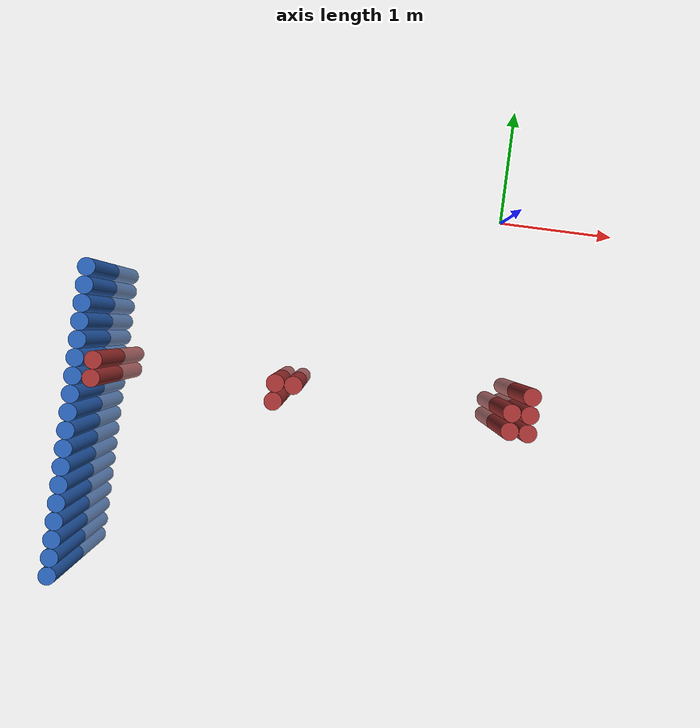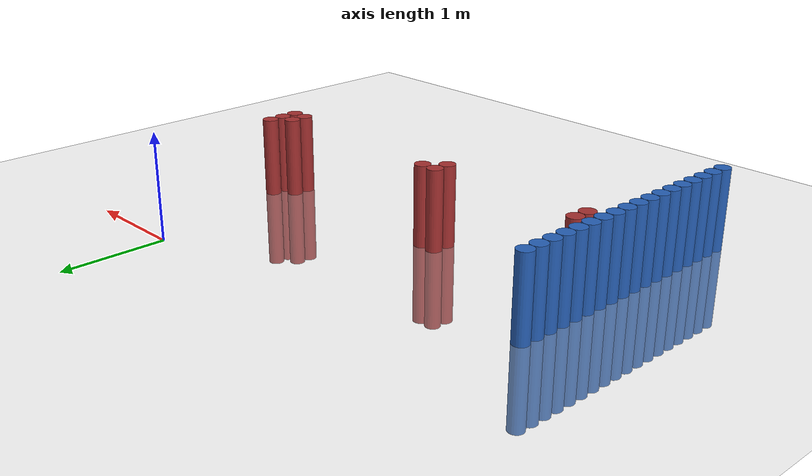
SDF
<sdf version="1.6">
 <world name="default">
  <model name="ground_plane">
   <static>1</static>
   <link name="link">
    <collision name="collision">
     <geometry><plane><normal>0 0 1</normal><size>100 100</size></plane></geometry>
     <surface><friction><ode><mu>100</mu><mu2>50</mu2></ode></friction></surface>
    </collision>
    <visual name="visual">
     <cast_shadows>0</cast_shadows>
     <geometry><plane><normal>0 0 1</normal><size>100 100</size></plane></geometry>
     <material>
      <script><uri>file://media/materials/scripts/gazebo.material</uri><name>Gazebo/Grey</name></script>
     </material>
    </visual>
   </link>
  </model>
  <model name="unit_cylinder_69">
   <static>1</static>
   <pose>-3.425000 -3.425000 0.000000 0.000000 0.000000 0.000000</pose>
   <link name="link">
    <inertial>
     <mass>1</mass>
     <inertia><ixx>0.145833</ixx><ixy>0</ixy><ixz>0</ixz><iyy>0.145833</iyy><iyz>0</iyz><izz>0.125</izz></inertia>
    </inertial>
    <collision name="collision">
     <geometry><cylinder><radius>0.075000</radius><length>1.5</length></cylinder></geometry>
    </collision>
    <visual name="visual">
     <geometry><cylinder><radius>0.075000</radius><length>1.5</length></cylinder></geometry>
     <material>
      <ambient>0.152000 0.379000 0.720000 1</ambient>
      <diffuse>0.152000 0.379000 0.720000 1</diffuse>
     </material>
     <material>
      <script><name>Gazebo/Grey</name><uri>file://media/materials/scripts/gazebo.material</uri></script>
     </material>
    </visual>
   </link>
  </model>
  <model name="unit_cylinder_71">
   <static>1</static>
   <pose>-3.425000 -3.275000 0.000000 0.000000 0.000000 0.000000</pose>
   <link name="link">
    <inertial>
     <mass>1</mass>
     <inertia><ixx>0.145833</ixx><ixy>0</ixy><ixz>0</ixz><iyy>0.145833</iyy><iyz>0</iyz><izz>0.125</izz></inertia>
    </inertial>
    <collision name="collision">
     <geometry><cylinder><radius>0.075000</radius><length>1.5</length></cylinder></geometry>
    </collision>
    <visual name="visual">
     <geometry><cylinder><radius>0.075000</radius><length>1.5</length></cylinder></geometry>
     <material>
      <ambient>0.152000 0.379000 0.720000 1</ambient>
      <diffuse>0.152000 0.379000 0.720000 1</diffuse>
     </material>
     <material>
      <script><name>Gazebo/Grey</name><uri>file://media/materials/scripts/gazebo.material</uri></script>
     </material>
    </visual>
   </link>
  </model>
  <model name="unit_cylinder_73">
   <static>1</static>
   <pose>-3.425000 -3.125000 0.000000 0.000000 0.000000 0.000000</pose>
   <link name="link">
    <inertial>
     <mass>1</mass>
     <inertia><ixx>0.145833</ixx><ixy>0</ixy><ixz>0</ixz><iyy>0.145833</iyy><iyz>0</iyz><izz>0.125</izz></inertia>
    </inertial>
    <collision name="collision">
     <geometry><cylinder><radius>0.075000</radius><length>1.5</length></cylinder></geometry>
    </collision>
    <visual name="visual">
     <geometry><cylinder><radius>0.075000</radius><length>1.5</length></cylinder></geometry>
     <material>
      <ambient>0.152000 0.379000 0.720000 1</ambient>
      <diffuse>0.152000 0.379000 0.720000 1</diffuse>
     </material>
     <material>
      <script><name>Gazebo/Grey</name><uri>file://media/materials/scripts/gazebo.material</uri></script>
     </material>
    </visual>
   </link>
  </model>
  <model name="unit_cylinder_75">
   <static>1</static>
   <pose>-3.425000 -2.975000 0.000000 0.000000 0.000000 0.000000</pose>
   <link name="link">
    <inertial>
     <mass>1</mass>
     <inertia><ixx>0.145833</ixx><ixy>0</ixy><ixz>0</ixz><iyy>0.145833</iyy><iyz>0</iyz><izz>0.125</izz></inertia>
    </inertial>
    <collision name="collision">
     <geometry><cylinder><radius>0.075000</radius><length>1.5</length></cylinder></geometry>
    </collision>
    <visual name="visual">
     <geometry><cylinder><radius>0.075000</radius><length>1.5</length></cylinder></geometry>
     <material>
      <ambient>0.152000 0.379000 0.720000 1</ambient>
      <diffuse>0.152000 0.379000 0.720000 1</diffuse>
     </material>
     <material>
      <script><name>Gazebo/Grey</name><uri>file://media/materials/scripts/gazebo.material</uri></script>
     </material>
    </visual>
   </link>
  </model>
  <model name="unit_cylinder_77">
   <static>1</static>
   <pose>-3.425000 -2.825000 0.000000 0.000000 0.000000 0.000000</pose>
   <link name="link">
    <inertial>
     <mass>1</mass>
     <inertia><ixx>0.145833</ixx><ixy>0</ixy><ixz>0</ixz><iyy>0.145833</iyy><iyz>0</iyz><izz>0.125</izz></inertia>
    </inertial>
    <collision name="collision">
     <geometry><cylinder><radius>0.075000</radius><length>1.5</length></cylinder></geometry>
    </collision>
    <visual name="visual">
     <geometry><cylinder><radius>0.075000</radius><length>1.5</length></cylinder></geometry>
     <material>
      <ambient>0.152000 0.379000 0.720000 1</ambient>
      <diffuse>0.152000 0.379000 0.720000 1</diffuse>
     </material>
     <material>
      <script><name>Gazebo/Grey</name><uri>file://media/materials/scripts/gazebo.material</uri></script>
     </material>
    </visual>
   </link>
  </model>
  <model name="unit_cylinder_79">
   <static>1</static>
   <pose>-3.425000 -2.675000 0.000000 0.000000 0.000000 0.000000</pose>
   <link name="link">
    <inertial>
     <mass>1</mass>
     <inertia><ixx>0.145833</ixx><ixy>0</ixy><ixz>0</ixz><iyy>0.145833</iyy><iyz>0</iyz><izz>0.125</izz></inertia>
    </inertial>
    <collision name="collision">
     <geometry><cylinder><radius>0.075000</radius><length>1.5</length></cylinder></geometry>
    </collision>
    <visual name="visual">
     <geometry><cylinder><radius>0.075000</radius><length>1.5</length></cylinder></geometry>
     <material>
      <ambient>0.152000 0.379000 0.720000 1</ambient>
      <diffuse>0.152000 0.379000 0.720000 1</diffuse>
     </material>
     <material>
      <script><name>Gazebo/Grey</name><uri>file://media/materials/scripts/gazebo.material</uri></script>
     </material>
    </visual>
   </link>
  </model>
  <model name="unit_cylinder_81">
   <static>1</static>
   <pose>-3.425000 -2.525000 0.000000 0.000000 0.000000 0.000000</pose>
   <link name="link">
    <inertial>
     <mass>1</mass>
     <inertia><ixx>0.145833</ixx><ixy>0</ixy><ixz>0</ixz><iyy>0.145833</iyy><iyz>0</iyz><izz>0.125</izz></inertia>
    </inertial>
    <collision name="collision">
     <geometry><cylinder><radius>0.075000</radius><length>1.5</length></cylinder></geometry>
    </collision>
    <visual name="visual">
     <geometry><cylinder><radius>0.075000</radius><length>1.5</length></cylinder></geometry>
     <material>
      <ambient>0.152000 0.379000 0.720000 1</ambient>
      <diffuse>0.152000 0.379000 0.720000 1</diffuse>
     </material>
     <material>
      <script><name>Gazebo/Grey</name><uri>file://media/materials/scripts/gazebo.material</uri></script>
     </material>
    </visual>
   </link>
  </model>
  <model name="unit_cylinder_83">
   <static>1</static>
   <pose>-3.425000 -2.375000 0.000000 0.000000 0.000000 0.000000</pose>
   <link name="link">
    <inertial>
     <mass>1</mass>
     <inertia><ixx>0.145833</ixx><ixy>0</ixy><ixz>0</ixz><iyy>0.145833</iyy><iyz>0</iyz><izz>0.125</izz></inertia>
    </inertial>
    <collision name="collision">
     <geometry><cylinder><radius>0.075000</radius><length>1.5</length></cylinder></geometry>
    </collision>
    <visual name="visual">
     <geometry><cylinder><radius>0.075000</radius><length>1.5</length></cylinder></geometry>
     <material>
      <ambient>0.152000 0.379000 0.720000 1</ambient>
      <diffuse>0.152000 0.379000 0.720000 1</diffuse>
     </material>
     <material>
      <script><name>Gazebo/Grey</name><uri>file://media/materials/scripts/gazebo.material</uri></script>
     </material>
    </visual>
   </link>
  </model>
  <model name="unit_cylinder_85">
   <static>1</static>
   <pose>-3.425000 -2.225000 0.000000 0.000000 0.000000 0.000000</pose>
   <link name="link">
    <inertial>
     <mass>1</mass>
     <inertia><ixx>0.145833</ixx><ixy>0</ixy><ixz>0</ixz><iyy>0.145833</iyy><iyz>0</iyz><izz>0.125</izz></inertia>
    </inertial>
    <collision name="collision">
     <geometry><cylinder><radius>0.075000</radius><length>1.5</length></cylinder></geometry>
    </collision>
    <visual name="visual">
     <geometry><cylinder><radius>0.075000</radius><length>1.5</length></cylinder></geometry>
     <material>
      <ambient>0.152000 0.379000 0.720000 1</ambient>
      <diffuse>0.152000 0.379000 0.720000 1</diffuse>
     </material>
     <material>
      <script><name>Gazebo/Grey</name><uri>file://media/materials/scripts/gazebo.material</uri></script>
     </material>
    </visual>
   </link>
  </model>
  <model name="unit_cylinder_87">
   <static>1</static>
   <pose>-3.425000 -2.075000 0.000000 0.000000 0.000000 0.000000</pose>
   <link name="link">
    <inertial>
     <mass>1</mass>
     <inertia><ixx>0.145833</ixx><ixy>0</ixy><ixz>0</ixz><iyy>0.145833</iyy><iyz>0</iyz><izz>0.125</izz></inertia>
    </inertial>
    <collision name="collision">
     <geometry><cylinder><radius>0.075000</radius><length>1.5</length></cylinder></geometry>
    </collision>
    <visual name="visual">
     <geometry><cylinder><radius>0.075000</radius><length>1.5</length></cylinder></geometry>
     <material>
      <ambient>0.152000 0.379000 0.720000 1</ambient>
      <diffuse>0.152000 0.379000 0.720000 1</diffuse>
     </material>
     <material>
      <script><name>Gazebo/Grey</name><uri>file://media/materials/scripts/gazebo.material</uri></script>
     </material>
    </visual>
   </link>
  </model>
  <model name="unit_cylinder_89">
   <static>1</static>
   <pose>-3.425000 -1.925000 0.000000 0.000000 0.000000 0.000000</pose>
   <link name="link">
    <inertial>
     <mass>1</mass>
     <inertia><ixx>0.145833</ixx><ixy>0</ixy><ixz>0</ixz><iyy>0.145833</iyy><iyz>0</iyz><izz>0.125</izz></inertia>
    </inertial>
    <collision name="collision">
     <geometry><cylinder><radius>0.075000</radius><length>1.5</length></cylinder></geometry>
    </collision>
    <visual name="visual">
     <geometry><cylinder><radius>0.075000</radius><length>1.5</length></cylinder></geometry>
     <material>
      <ambient>0.152000 0.379000 0.720000 1</ambient>
      <diffuse>0.152000 0.379000 0.720000 1</diffuse>
     </material>
     <material>
      <script><name>Gazebo/Grey</name><uri>file://media/materials/scripts/gazebo.material</uri></script>
     </material>
    </visual>
   </link>
  </model>
  <model name="unit_cylinder_91">
   <static>1</static>
   <pose>-3.425000 -1.775000 0.000000 0.000000 0.000000 0.000000</pose>
   <link name="link">
    <inertial>
     <mass>1</mass>
     <inertia><ixx>0.145833</ixx><ixy>0</ixy><ixz>0</ixz><iyy>0.145833</iyy><iyz>0</iyz><izz>0.125</izz></inertia>
    </inertial>
    <collision name="collision">
     <geometry><cylinder><radius>0.075000</radius><length>1.5</length></cylinder></geometry>
    </collision>
    <visual name="visual">
     <geometry><cylinder><radius>0.075000</radius><length>1.5</length></cylinder></geometry>
     <material>
      <ambient>0.152000 0.379000 0.720000 1</ambient>
      <diffuse>0.152000 0.379000 0.720000 1</diffuse>
     </material>
     <material>
      <script><name>Gazebo/Grey</name><uri>file://media/materials/scripts/gazebo.material</uri></script>
     </material>
    </visual>
   </link>
  </model>
  <model name="unit_cylinder_93">
   <static>1</static>
   <pose>-3.425000 -1.625000 0.000000 0.000000 0.000000 0.000000</pose>
   <link name="link">
    <inertial>
     <mass>1</mass>
     <inertia><ixx>0.145833</ixx><ixy>0</ixy><ixz>0</ixz><iyy>0.145833</iyy><iyz>0</iyz><izz>0.125</izz></inertia>
    </inertial>
    <collision name="collision">
     <geometry><cylinder><radius>0.075000</radius><length>1.5</length></cylinder></geometry>
    </collision>
    <visual name="visual">
     <geometry><cylinder><radius>0.075000</radius><length>1.5</length></cylinder></geometry>
     <material>
      <ambient>0.152000 0.379000 0.720000 1</ambient>
      <diffuse>0.152000 0.379000 0.720000 1</diffuse>
     </material>
     <material>
      <script><name>Gazebo/Grey</name><uri>file://media/materials/scripts/gazebo.material</uri></script>
     </material>
    </visual>
   </link>
  </model>
  <model name="unit_cylinder_95">
   <static>1</static>
   <pose>-3.425000 -1.475000 0.000000 0.000000 0.000000 0.000000</pose>
   <link name="link">
    <inertial>
     <mass>1</mass>
     <inertia><ixx>0.145833</ixx><ixy>0</ixy><ixz>0</ixz><iyy>0.145833</iyy><iyz>0</iyz><izz>0.125</izz></inertia>
    </inertial>
    <collision name="collision">
     <geometry><cylinder><radius>0.075000</radius><length>1.5</length></cylinder></geometry>
    </collision>
    <visual name="visual">
     <geometry><cylinder><radius>0.075000</radius><length>1.5</length></cylinder></geometry>
     <material>
      <ambient>0.152000 0.379000 0.720000 1</ambient>
      <diffuse>0.152000 0.379000 0.720000 1</diffuse>
     </material>
     <material>
      <script><name>Gazebo/Grey</name><uri>file://media/materials/scripts/gazebo.material</uri></script>
     </material>
    </visual>
   </link>
  </model>
  <model name="unit_cylinder_97">
   <static>1</static>
   <pose>-3.425000 -1.325000 0.000000 0.000000 0.000000 0.000000</pose>
   <link name="link">
    <inertial>
     <mass>1</mass>
     <inertia><ixx>0.145833</ixx><ixy>0</ixy><ixz>0</ixz><iyy>0.145833</iyy><iyz>0</iyz><izz>0.125</izz></inertia>
    </inertial>
    <collision name="collision">
     <geometry><cylinder><radius>0.075000</radius><length>1.5</length></cylinder></geometry>
    </collision>
    <visual name="visual">
     <geometry><cylinder><radius>0.075000</radius><length>1.5</length></cylinder></geometry>
     <material>
      <ambient>0.152000 0.379000 0.720000 1</ambient>
      <diffuse>0.152000 0.379000 0.720000 1</diffuse>
     </material>
     <material>
      <script><name>Gazebo/Grey</name><uri>file://media/materials/scripts/gazebo.material</uri></script>
     </material>
    </visual>
   </link>
  </model>
  <model name="unit_cylinder_99">
   <static>1</static>
   <pose>-3.425000 -1.175000 0.000000 0.000000 0.000000 0.000000</pose>
   <link name="link">
    <inertial>
     <mass>1</mass>
     <inertia><ixx>0.145833</ixx><ixy>0</ixy><ixz>0</ixz><iyy>0.145833</iyy><iyz>0</iyz><izz>0.125</izz></inertia>
    </inertial>
    <collision name="collision">
     <geometry><cylinder><radius>0.075000</radius><length>1.5</length></cylinder></geometry>
    </collision>
    <visual name="visual">
     <geometry><cylinder><radius>0.075000</radius><length>1.5</length></cylinder></geometry>
     <material>
      <ambient>0.152000 0.379000 0.720000 1</ambient>
      <diffuse>0.152000 0.379000 0.720000 1</diffuse>
     </material>
     <material>
      <script><name>Gazebo/Grey</name><uri>file://media/materials/scripts/gazebo.material</uri></script>
     </material>
    </visual>
   </link>
  </model>
  <model name="unit_cylinder_101">
   <static>1</static>
   <pose>-3.425000 -1.025000 0.000000 0.000000 0.000000 0.000000</pose>
   <link name="link">
    <inertial>
     <mass>1</mass>
     <inertia><ixx>0.145833</ixx><ixy>0</ixy><ixz>0</ixz><iyy>0.145833</iyy><iyz>0</iyz><izz>0.125</izz></inertia>
    </inertial>
    <collision name="collision">
     <geometry><cylinder><radius>0.075000</radius><length>1.5</length></cylinder></geometry>
    </collision>
    <visual name="visual">
     <geometry><cylinder><radius>0.075000</radius><length>1.5</length></cylinder></geometry>
     <material>
      <ambient>0.152000 0.379000 0.720000 1</ambient>
      <diffuse>0.152000 0.379000 0.720000 1</diffuse>
     </material>
     <material>
      <script><name>Gazebo/Grey</name><uri>file://media/materials/scripts/gazebo.material</uri></script>
     </material>
    </visual>
   </link>
  </model>
  <model name="unit_cylinder_103">
   <static>1</static>
   <pose>-3.425000 -0.875000 0.000000 0.000000 0.000000 0.000000</pose>
   <link name="link">
    <inertial>
     <mass>1</mass>
     <inertia><ixx>0.145833</ixx><ixy>0</ixy><ixz>0</ixz><iyy>0.145833</iyy><iyz>0</iyz><izz>0.125</izz></inertia>
    </inertial>
    <collision name="collision">
     <geometry><cylinder><radius>0.075000</radius><length>1.5</length></cylinder></geometry>
    </collision>
    <visual name="visual">
     <geometry><cylinder><radius>0.075000</radius><length>1.5</length></cylinder></geometry>
     <material>
      <ambient>0.152000 0.379000 0.720000 1</ambient>
      <diffuse>0.152000 0.379000 0.720000 1</diffuse>
     </material>
     <material>
      <script><name>Gazebo/Grey</name><uri>file://media/materials/scripts/gazebo.material</uri></script>
     </material>
    </visual>
   </link>
  </model>
  <model name="unit_cylinder_208">
   <static>1</static>
   <pose>-3.425000 -1.925000 0.000000 0.000000 0.000000 0.000000</pose>
   <link name="link">
    <inertial>
     <mass>1</mass>
     <inertia><ixx>0.145833</ixx><ixy>0</ixy><ixz>0</ixz><iyy>0.145833</iyy><iyz>0</iyz><izz>0.125</izz></inertia>
    </inertial>
    <collision name="collision">
     <geometry><cylinder><radius>0.075000</radius><length>1.5</length></cylinder></geometry>
    </collision>
    <visual name="visual">
     <geometry><cylinder><radius>0.075000</radius><length>1.5</length></cylinder></geometry>
     <material>
      <ambient>0.152000 0.379000 0.720000 1</ambient>
      <diffuse>0.152000 0.379000 0.720000 1</diffuse>
     </material>
     <material>
      <script><name>Gazebo/Grey</name><uri>file://media/materials/scripts/gazebo.material</uri></script>
     </material>
    </visual>
   </link>
  </model>
  <model name="unit_cylinder_209">
   <static>1</static>
   <pose>-3.425000 -1.775000 0.000000 0.000000 0.000000 0.000000</pose>
   <link name="link">
    <inertial>
     <mass>1</mass>
     <inertia><ixx>0.145833</ixx><ixy>0</ixy><ixz>0</ixz><iyy>0.145833</iyy><iyz>0</iyz><izz>0.125</izz></inertia>
    </inertial>
    <collision name="collision">
     <geometry><cylinder><radius>0.075000</radius><length>1.5</length></cylinder></geometry>
    </collision>
    <visual name="visual">
     <geometry><cylinder><radius>0.075000</radius><length>1.5</length></cylinder></geometry>
     <material>
      <ambient>0.152000 0.379000 0.720000 1</ambient>
      <diffuse>0.152000 0.379000 0.720000 1</diffuse>
     </material>
     <material>
      <script><name>Gazebo/Grey</name><uri>file://media/materials/scripts/gazebo.material</uri></script>
     </material>
    </visual>
   </link>
  </model>
  <model name="unit_cylinder_210">
   <static>1</static>
   <pose>-3.425000 -1.625000 0.000000 0.000000 0.000000 0.000000</pose>
   <link name="link">
    <inertial>
     <mass>1</mass>
     <inertia><ixx>0.145833</ixx><ixy>0</ixy><ixz>0</ixz><iyy>0.145833</iyy><iyz>0</iyz><izz>0.125</izz></inertia>
    </inertial>
    <collision name="collision">
     <geometry><cylinder><radius>0.075000</radius><length>1.5</length></cylinder></geometry>
    </collision>
    <visual name="visual">
     <geometry><cylinder><radius>0.075000</radius><length>1.5</length></cylinder></geometry>
     <material>
      <ambient>0.152000 0.379000 0.720000 1</ambient>
      <diffuse>0.152000 0.379000 0.720000 1</diffuse>
     </material>
     <material>
      <script><name>Gazebo/Grey</name><uri>file://media/materials/scripts/gazebo.material</uri></script>
     </material>
    </visual>
   </link>
  </model>
  <model name="unit_cylinder_211">
   <static>1</static>
   <pose>-3.425000 -1.475000 0.000000 0.000000 0.000000 0.000000</pose>
   <link name="link">
    <inertial>
     <mass>1</mass>
     <inertia><ixx>0.145833</ixx><ixy>0</ixy><ixz>0</ixz><iyy>0.145833</iyy><iyz>0</iyz><izz>0.125</izz></inertia>
    </inertial>
    <collision name="collision">
     <geometry><cylinder><radius>0.075000</radius><length>1.5</length></cylinder></geometry>
    </collision>
    <visual name="visual">
     <geometry><cylinder><radius>0.075000</radius><length>1.5</length></cylinder></geometry>
     <material>
      <ambient>0.152000 0.379000 0.720000 1</ambient>
      <diffuse>0.152000 0.379000 0.720000 1</diffuse>
     </material>
     <material>
      <script><name>Gazebo/Grey</name><uri>file://media/materials/scripts/gazebo.material</uri></script>
     </material>
    </visual>
   </link>
  </model>
  <model name="unit_cylinder_212">
   <static>1</static>
   <pose>-3.425000 -1.325000 0.000000 0.000000 0.000000 0.000000</pose>
   <link name="link">
    <inertial>
     <mass>1</mass>
     <inertia><ixx>0.145833</ixx><ixy>0</ixy><ixz>0</ixz><iyy>0.145833</iyy><iyz>0</iyz><izz>0.125</izz></inertia>
    </inertial>
    <collision name="collision">
     <geometry><cylinder><radius>0.075000</radius><length>1.5</length></cylinder></geometry>
    </collision>
    <visual name="visual">
     <geometry><cylinder><radius>0.075000</radius><length>1.5</length></cylinder></geometry>
     <material>
      <ambient>0.152000 0.379000 0.720000 1</ambient>
      <diffuse>0.152000 0.379000 0.720000 1</diffuse>
     </material>
     <material>
      <script><name>Gazebo/Grey</name><uri>file://media/materials/scripts/gazebo.material</uri></script>
     </material>
    </visual>
   </link>
  </model>
  <model name="unit_cylinder_213">
   <static>1</static>
   <pose>-3.425000 -1.175000 0.000000 0.000000 0.000000 0.000000</pose>
   <link name="link">
    <inertial>
     <mass>1</mass>
     <inertia><ixx>0.145833</ixx><ixy>0</ixy><ixz>0</ixz><iyy>0.145833</iyy><iyz>0</iyz><izz>0.125</izz></inertia>
    </inertial>
    <collision name="collision">
     <geometry><cylinder><radius>0.075000</radius><length>1.5</length></cylinder></geometry>
    </collision>
    <visual name="visual">
     <geometry><cylinder><radius>0.075000</radius><length>1.5</length></cylinder></geometry>
     <material>
      <ambient>0.152000 0.379000 0.720000 1</ambient>
      <diffuse>0.152000 0.379000 0.720000 1</diffuse>
     </material>
     <material>
      <script><name>Gazebo/Grey</name><uri>file://media/materials/scripts/gazebo.material</uri></script>
     </material>
    </visual>
   </link>
  </model>
  <model name="unit_cylinder_214">
   <static>1</static>
   <pose>-3.425000 -1.025000 0.000000 0.000000 0.000000 0.000000</pose>
   <link name="link">
    <inertial>
     <mass>1</mass>
     <inertia><ixx>0.145833</ixx><ixy>0</ixy><ixz>0</ixz><iyy>0.145833</iyy><iyz>0</iyz><izz>0.125</izz></inertia>
    </inertial>
    <collision name="collision">
     <geometry><cylinder><radius>0.075000</radius><length>1.5</length></cylinder></geometry>
    </collision>
    <visual name="visual">
     <geometry><cylinder><radius>0.075000</radius><length>1.5</length></cylinder></geometry>
     <material>
      <ambient>0.152000 0.379000 0.720000 1</ambient>
      <diffuse>0.152000 0.379000 0.720000 1</diffuse>
     </material>
     <material>
      <script><name>Gazebo/Grey</name><uri>file://media/materials/scripts/gazebo.material</uri></script>
     </material>
    </visual>
   </link>
  </model>
  <model name="unit_cylinder_215">
   <static>1</static>
   <pose>-3.425000 -0.875000 0.000000 0.000000 0.000000 0.000000</pose>
   <link name="link">
    <inertial>
     <mass>1</mass>
     <inertia><ixx>0.145833</ixx><ixy>0</ixy><ixz>0</ixz><iyy>0.145833</iyy><iyz>0</iyz><izz>0.125</izz></inertia>
    </inertial>
    <collision name="collision">
     <geometry><cylinder><radius>0.075000</radius><length>1.5</length></cylinder></geometry>
    </collision>
    <visual name="visual">
     <geometry><cylinder><radius>0.075000</radius><length>1.5</length></cylinder></geometry>
     <material>
      <ambient>0.152000 0.379000 0.720000 1</ambient>
      <diffuse>0.152000 0.379000 0.720000 1</diffuse>
     </material>
     <material>
      <script><name>Gazebo/Grey</name><uri>file://media/materials/scripts/gazebo.material</uri></script>
     </material>
    </visual>
   </link>
  </model>
  <model name="unit_cylinder_258">
   <static>1</static>
   <pose>-3.275000 -1.775000 0.000000 0.000000 0.000000 0.000000</pose>
   <link name="link">
    <inertial>
     <mass>1</mass>
     <inertia><ixx>0.145833</ixx><ixy>0</ixy><ixz>0</ixz><iyy>0.145833</iyy><iyz>0</iyz><izz>0.125</izz></inertia>
    </inertial>
    <collision name="collision">
     <geometry><cylinder><radius>0.075000</radius><length>1.5</length></cylinder></geometry>
    </collision>
    <visual name="visual">
     <geometry><cylinder><radius>0.075000</radius><length>1.5</length></cylinder></geometry>
     <material>
      <ambient>0.648000 0.192000 0.192000 1</ambient>
      <diffuse>0.648000 0.192000 0.192000 1</diffuse>
     </material>
     <material>
      <script><name>Gazebo/Grey</name><uri>file://media/materials/scripts/gazebo.material</uri></script>
     </material>
    </visual>
   </link>
  </model>
  <model name="unit_cylinder_259">
   <static>1</static>
   <pose>-3.275000 -1.625000 0.000000 0.000000 0.000000 0.000000</pose>
   <link name="link">
    <inertial>
     <mass>1</mass>
     <inertia><ixx>0.145833</ixx><ixy>0</ixy><ixz>0</ixz><iyy>0.145833</iyy><iyz>0</iyz><izz>0.125</izz></inertia>
    </inertial>
    <collision name="collision">
     <geometry><cylinder><radius>0.075000</radius><length>1.5</length></cylinder></geometry>
    </collision>
    <visual name="visual">
     <geometry><cylinder><radius>0.075000</radius><length>1.5</length></cylinder></geometry>
     <material>
      <ambient>0.648000 0.192000 0.192000 1</ambient>
      <diffuse>0.648000 0.192000 0.192000 1</diffuse>
     </material>
     <material>
      <script><name>Gazebo/Grey</name><uri>file://media/materials/scripts/gazebo.material</uri></script>
     </material>
    </visual>
   </link>
  </model>
  <model name="unit_cylinder_297">
   <static>1</static>
   <pose>-1.775000 -1.775000 0.000000 0.000000 0.000000 0.000000</pose>
   <link name="link">
    <inertial>
     <mass>1</mass>
     <inertia><ixx>0.145833</ixx><ixy>0</ixy><ixz>0</ixz><iyy>0.145833</iyy><iyz>0</iyz><izz>0.125</izz></inertia>
    </inertial>
    <collision name="collision">
     <geometry><cylinder><radius>0.075000</radius><length>1.5</length></cylinder></geometry>
    </collision>
    <visual name="visual">
     <geometry><cylinder><radius>0.075000</radius><length>1.5</length></cylinder></geometry>
     <material>
      <ambient>0.648000 0.192000 0.192000 1</ambient>
      <diffuse>0.648000 0.192000 0.192000 1</diffuse>
     </material>
     <material>
      <script><name>Gazebo/Grey</name><uri>file://media/materials/scripts/gazebo.material</uri></script>
     </material>
    </visual>
   </link>
  </model>
  <model name="unit_cylinder_298">
   <static>1</static>
   <pose>-1.775000 -1.625000 0.000000 0.000000 0.000000 0.000000</pose>
   <link name="link">
    <inertial>
     <mass>1</mass>
     <inertia><ixx>0.145833</ixx><ixy>0</ixy><ixz>0</ixz><iyy>0.145833</iyy><iyz>0</iyz><izz>0.125</izz></inertia>
    </inertial>
    <collision name="collision">
     <geometry><cylinder><radius>0.075000</radius><length>1.5</length></cylinder></geometry>
    </collision>
    <visual name="visual">
     <geometry><cylinder><radius>0.075000</radius><length>1.5</length></cylinder></geometry>
     <material>
      <ambient>0.648000 0.192000 0.192000 1</ambient>
      <diffuse>0.648000 0.192000 0.192000 1</diffuse>
     </material>
     <material>
      <script><name>Gazebo/Grey</name><uri>file://media/materials/scripts/gazebo.material</uri></script>
     </material>
    </visual>
   </link>
  </model>
  <model name="unit_cylinder_303">
   <static>1</static>
   <pose>-1.625000 -1.625000 0.000000 0.000000 0.000000 0.000000</pose>
   <link name="link">
    <inertial>
     <mass>1</mass>
     <inertia><ixx>0.145833</ixx><ixy>0</ixy><ixz>0</ixz><iyy>0.145833</iyy><iyz>0</iyz><izz>0.125</izz></inertia>
    </inertial>
    <collision name="collision">
     <geometry><cylinder><radius>0.075000</radius><length>1.5</length></cylinder></geometry>
    </collision>
    <visual name="visual">
     <geometry><cylinder><radius>0.075000</radius><length>1.5</length></cylinder></geometry>
     <material>
      <ambient>0.648000 0.192000 0.192000 1</ambient>
      <diffuse>0.648000 0.192000 0.192000 1</diffuse>
     </material>
     <material>
      <script><name>Gazebo/Grey</name><uri>file://media/materials/scripts/gazebo.material</uri></script>
     </material>
    </visual>
   </link>
  </model>
  <model name="unit_cylinder_323">
   <static>1</static>
   <pose>0.175000 -1.775000 0.000000 0.000000 0.000000 0.000000</pose>
   <link name="link">
    <inertial>
     <mass>1</mass>
     <inertia><ixx>0.145833</ixx><ixy>0</ixy><ixz>0</ixz><iyy>0.145833</iyy><iyz>0</iyz><izz>0.125</izz></inertia>
    </inertial>
    <collision name="collision">
     <geometry><cylinder><radius>0.075000</radius><length>1.5</length></cylinder></geometry>
    </collision>
    <visual name="visual">
     <geometry><cylinder><radius>0.075000</radius><length>1.5</length></cylinder></geometry>
     <material>
      <ambient>0.648000 0.192000 0.192000 1</ambient>
      <diffuse>0.648000 0.192000 0.192000 1</diffuse>
     </material>
     <material>
      <script><name>Gazebo/Grey</name><uri>file://media/materials/scripts/gazebo.material</uri></script>
     </material>
    </visual>
   </link>
  </model>
  <model name="unit_cylinder_324">
   <static>1</static>
   <pose>0.175000 -1.625000 0.000000 0.000000 0.000000 0.000000</pose>
   <link name="link">
    <inertial>
     <mass>1</mass>
     <inertia><ixx>0.145833</ixx><ixy>0</ixy><ixz>0</ixz><iyy>0.145833</iyy><iyz>0</iyz><izz>0.125</izz></inertia>
    </inertial>
    <collision name="collision">
     <geometry><cylinder><radius>0.075000</radius><length>1.5</length></cylinder></geometry>
    </collision>
    <visual name="visual">
     <geometry><cylinder><radius>0.075000</radius><length>1.5</length></cylinder></geometry>
     <material>
      <ambient>0.648000 0.192000 0.192000 1</ambient>
      <diffuse>0.648000 0.192000 0.192000 1</diffuse>
     </material>
     <material>
      <script><name>Gazebo/Grey</name><uri>file://media/materials/scripts/gazebo.material</uri></script>
     </material>
    </visual>
   </link>
  </model>
  <model name="unit_cylinder_327">
   <static>1</static>
   <pose>0.325000 -1.775000 0.000000 0.000000 0.000000 0.000000</pose>
   <link name="link">
    <inertial>
     <mass>1</mass>
     <inertia><ixx>0.145833</ixx><ixy>0</ixy><ixz>0</ixz><iyy>0.145833</iyy><iyz>0</iyz><izz>0.125</izz></inertia>
    </inertial>
    <collision name="collision">
     <geometry><cylinder><radius>0.075000</radius><length>1.5</length></cylinder></geometry>
    </collision>
    <visual name="visual">
     <geometry><cylinder><radius>0.075000</radius><length>1.5</length></cylinder></geometry>
     <material>
      <ambient>0.648000 0.192000 0.192000 1</ambient>
      <diffuse>0.648000 0.192000 0.192000 1</diffuse>
     </material>
     <material>
      <script><name>Gazebo/Grey</name><uri>file://media/materials/scripts/gazebo.material</uri></script>
     </material>
    </visual>
   </link>
  </model>
  <model name="unit_cylinder_328">
   <static>1</static>
   <pose>0.325000 -1.625000 0.000000 0.000000 0.000000 0.000000</pose>
   <link name="link">
    <inertial>
     <mass>1</mass>
     <inertia><ixx>0.145833</ixx><ixy>0</ixy><ixz>0</ixz><iyy>0.145833</iyy><iyz>0</iyz><izz>0.125</izz></inertia>
    </inertial>
    <collision name="collision">
     <geometry><cylinder><radius>0.075000</radius><length>1.5</length></cylinder></geometry>
    </collision>
    <visual name="visual">
     <geometry><cylinder><radius>0.075000</radius><length>1.5</length></cylinder></geometry>
     <material>
      <ambient>0.648000 0.192000 0.192000 1</ambient>
      <diffuse>0.648000 0.192000 0.192000 1</diffuse>
     </material>
     <material>
      <script><name>Gazebo/Grey</name><uri>file://media/materials/scripts/gazebo.material</uri></script>
     </material>
    </visual>
   </link>
  </model>
  <model name="unit_cylinder_329">
   <static>1</static>
   <pose>0.325000 -1.475000 0.000000 0.000000 0.000000 0.000000</pose>
   <link name="link">
    <inertial>
     <mass>1</mass>
     <inertia><ixx>0.145833</ixx><ixy>0</ixy><ixz>0</ixz><iyy>0.145833</iyy><iyz>0</iyz><izz>0.125</izz></inertia>
    </inertial>
    <collision name="collision">
     <geometry><cylinder><radius>0.075000</radius><length>1.5</length></cylinder></geometry>
    </collision>
    <visual name="visual">
     <geometry><cylinder><radius>0.075000</radius><length>1.5</length></cylinder></geometry>
     <material>
      <ambient>0.648000 0.192000 0.192000 1</ambient>
      <diffuse>0.648000 0.192000 0.192000 1</diffuse>
     </material>
     <material>
      <script><name>Gazebo/Grey</name><uri>file://media/materials/scripts/gazebo.material</uri></script>
     </material>
    </visual>
   </link>
  </model>
 </world>
</sdf>
